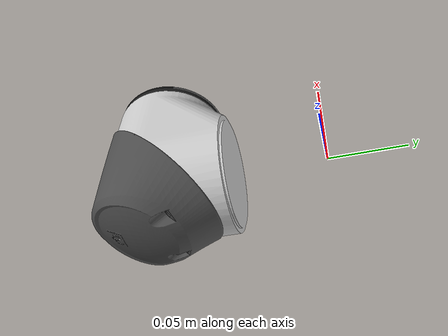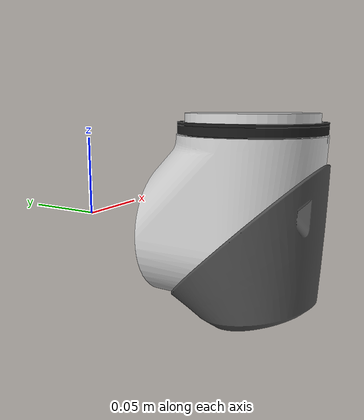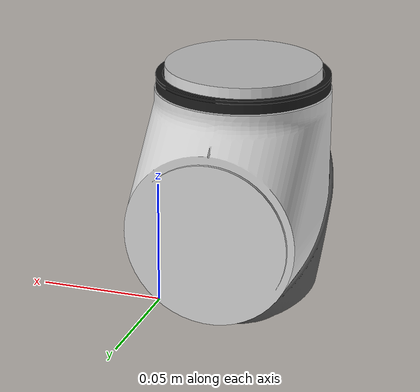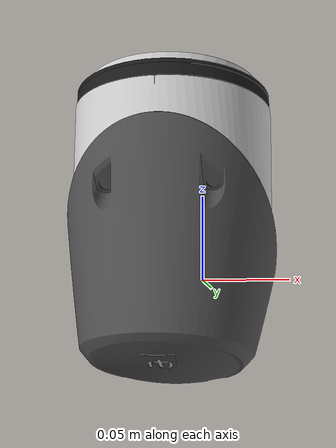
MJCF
<mujoco model="link4">
  <default>
    <default class="visual">
      <geom group="2" type="mesh" contype="0" conaffinity="0"/>
    </default>
    <default class="collision">
      <geom group="3" type="mesh"/>
    </default>
  </default>
  <asset>
    <material name="244,244,244_1" specular="0.5" shininess="0.5" rgba="0.8 0.8 0.8 1"/>
    <material name="125,125,125_1" specular="0.5" shininess="0.5" rgba="0.3 0.3 0.3 1"/>
    <material name="204,204,204_1" specular="0.5" shininess="0.5" rgba="0.1 0.1 0.1 1"/>
    <material name="64,64,64_3" specular="0.5" shininess="0.5" rgba="0.1 0.1 0.1 1"/>
    <material name="Material.007" specular="0.5" shininess="0.5" rgba="0.8 0.8 0.8 1"/>
    <mesh file="link4_0.obj"/>
    <mesh file="link4_1.obj"/>
    <mesh file="link4_2.obj"/>
    <mesh file="link4_3.obj"/>
    <mesh file="link4_4.obj"/>
  </asset>
  <worldbody>
    <body name="link4">
      <geom mesh="link4_0" material="Material.007" class="visual"/>
      <geom mesh="link4_1" material="64,64,64_3" class="visual"/>
      <geom mesh="link4_2" material="204,204,204_1" class="visual"/>
      <geom mesh="link4_3" material="125,125,125_1" class="visual"/>
      <geom mesh="link4_4" material="244,244,244_1" class="visual"/>
      <geom mesh="link4_0" class="collision"/>
      <geom mesh="link4_1" class="collision"/>
      <geom mesh="link4_2" class="collision"/>
      <geom mesh="link4_3" class="collision"/>
      <geom mesh="link4_4" class="collision"/>
    </body>
  </worldbody>
</mujoco>
